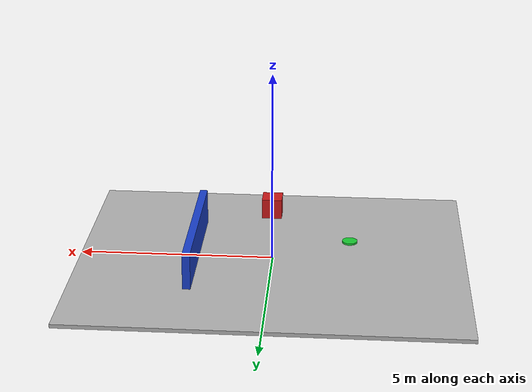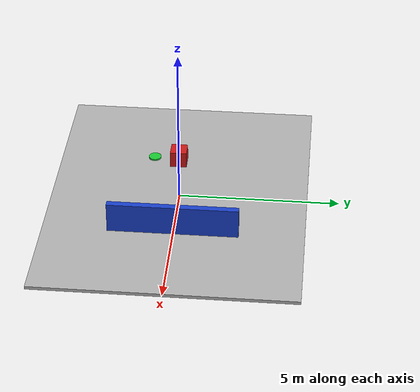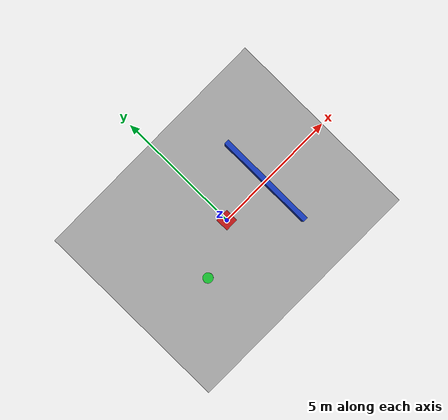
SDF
<?xml version="1.0" ?>
<sdf version="1.9">
  <world name="eel4332_gazebo_practice">
    <physics name="1ms" type="ignored">
      <max_step_size>0.001</max_step_size>
      <real_time_factor>1.0</real_time_factor>
    </physics>

    <plugin filename="gz-sim-physics-system"
            name="gz::sim::systems::Physics"/>
    <plugin filename="gz-sim-user-commands-system"
            name="gz::sim::systems::UserCommands"/>
    <plugin filename="gz-sim-scene-broadcaster-system"
            name="gz::sim::systems::SceneBroadcaster"/>

    <gravity>0 0 -9.81</gravity>
    <scene>
      <ambient>0.6 0.6 0.6 1</ambient>
      <background>0.75 0.85 0.95 1</background>
    </scene>

    <light type="directional" name="sun">
      <pose>0 0 10 0 0 0</pose>
      <diffuse>0.9 0.9 0.9 1</diffuse>
      <specular>0.2 0.2 0.2 1</specular>
      <direction>-0.4 0.2 -1</direction>
    </light>

    <model name="ground_plane">
      <static>true</static>
      <link name="ground_link">
        <collision name="ground_collision">
          <geometry>
            <box><size>10 8 0.1</size></box>
          </geometry>
        </collision>
        <visual name="ground_visual">
          <geometry>
            <box><size>10 8 0.1</size></box>
          </geometry>
          <material>
            <ambient>0.7 0.7 0.7 1</ambient>
            <diffuse>0.7 0.7 0.7 1</diffuse>
          </material>
        </visual>
      </link>
    </model>

    <model name="blue_wall">
      <static>true</static>
      <pose>2 0 0.5 0 0 0</pose>
      <link name="wall_link">
        <collision name="wall_collision">
          <geometry>
            <box><size>0.2 4 1</size></box>
          </geometry>
        </collision>
        <visual name="wall_visual">
          <geometry>
            <box><size>0.2 4 1</size></box>
          </geometry>
          <material>
            <ambient>0.1 0.25 0.8 1</ambient>
            <diffuse>0.1 0.25 0.8 1</diffuse>
          </material>
        </visual>
      </link>
    </model>

    <model name="red_dynamic_box">
      <pose>0 0 1.5 0 0 0</pose>
      <link name="box_link">
        <inertial>
          <mass>1.0</mass>
          <inertia>
            <ixx>0.041667</ixx>
            <iyy>0.041667</iyy>
            <izz>0.041667</izz>
          </inertia>
        </inertial>
        <collision name="box_collision">
          <geometry>
            <box><size>0.5 0.5 0.5</size></box>
          </geometry>
        </collision>
        <visual name="box_visual">
          <geometry>
            <box><size>0.5 0.5 0.5</size></box>
          </geometry>
          <material>
            <ambient>0.8 0.1 0.1 1</ambient>
            <diffuse>0.8 0.1 0.1 1</diffuse>
          </material>
        </visual>
      </link>
    </model>

    <model name="green_reference_marker">
      <static>true</static>
      <pose>-2 -1 0.05 0 0 0</pose>
      <link name="marker_link">
        <visual name="marker_visual">
          <geometry>
            <cylinder><radius>0.2</radius><length>0.1</length></cylinder>
          </geometry>
          <material>
            <ambient>0.1 0.8 0.2 1</ambient>
            <diffuse>0.1 0.8 0.2 1</diffuse>
          </material>
        </visual>
      </link>
    </model>
  </world>
</sdf>
